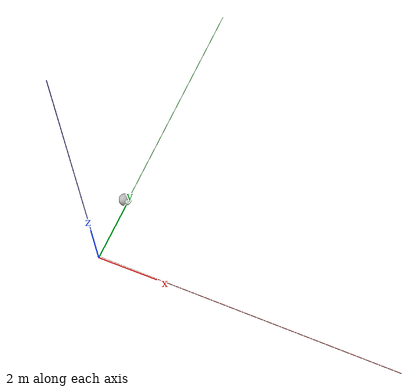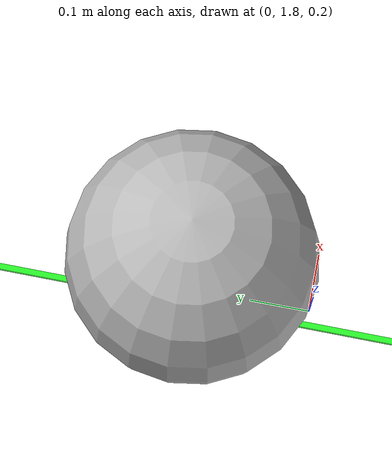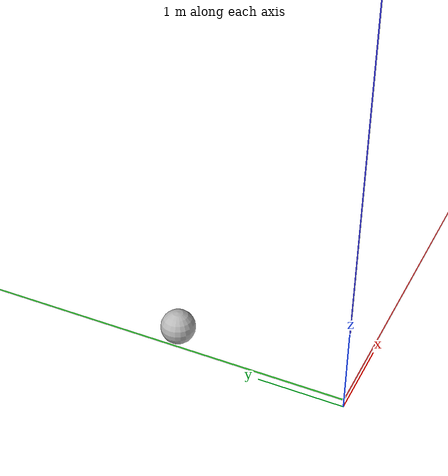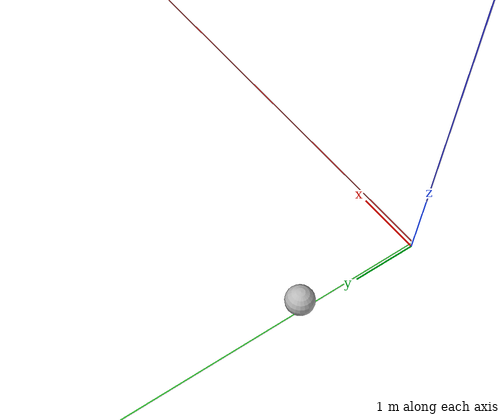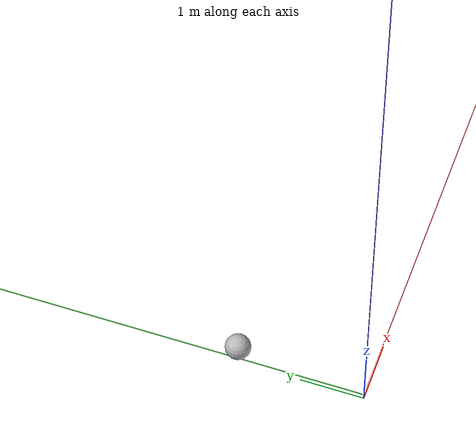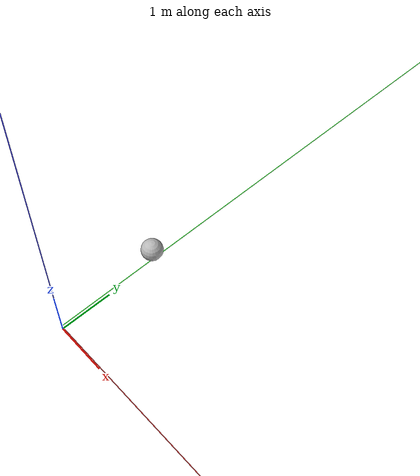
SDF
<sdf version="1.9">
 <world name="e2_runway">
  <physics name="1ms" type="ignore">
   <max_step_size>0.00125</max_step_size>
   <real_time_factor>1.0</real_time_factor>
  </physics>
  <plugin filename="gz-sim-physics-system" name="gz::sim::systems::Physics"/>
  <plugin filename="gz-sim-sensors-system" name="gz::sim::systems::Sensors">
   <render_engine>ogre</render_engine>
  </plugin>
  <plugin filename="gz-sim-user-commands-system" name="gz::sim::systems::UserCommands"/>
  <plugin filename="gz-sim-scene-broadcaster-system" name="gz::sim::systems::SceneBroadcaster"/>
  <plugin filename="gz-sim-imu-system" name="gz::sim::systems::Imu"/>
  <plugin filename="gz-sim-navsat-system" name="gz::sim::systems::NavSat"/>
  <spherical_coordinates>
   <latitude_deg>-35.363262</latitude_deg>
   <longitude_deg>149.165237</longitude_deg>
   <elevation>584</elevation>
   <heading_deg>0</heading_deg>
   <surface_model>EARTH_WGS84</surface_model>
  </spherical_coordinates>
  <light type="directional" name="sun">
   <pose>0 0 10 0 0 0</pose>
   <diffuse>0.8 0.8 0.8 1</diffuse>
   <specular>0.8 0.8 0.8 1</specular>
   <attenuation>
    <range>1000</range>
    <constant>0.9</constant>
    <linear>0.01</linear>
    <quadratic>0.001</quadratic>
   </attenuation>
   <direction>-0.5 0.1 -0.9</direction>
  </light>
  <model name="axes">
   <static>1</static>
   <link name="link">
    <visual name="r">
     <cast_shadows>0</cast_shadows>
     <pose>5 0 0.1 0 0 0</pose>
     <geometry><box><size>10 0.01 0.01</size></box></geometry>
     <material>
      <ambient>1 0 0 0.8</ambient>
      <diffuse>1 0 0 0.8</diffuse>
      <emissive>1 0 0 0.8</emissive>
      <specular>0.5 0.5 0.5 0.8</specular>
     </material>
    </visual>
    <visual name="g">
     <cast_shadows>0</cast_shadows>
     <pose>0 5 0.1 0 0 0</pose>
     <geometry><box><size>0.01 10 0.01</size></box></geometry>
     <material>
      <ambient>0 1 0 0.8</ambient>
      <diffuse>0 1 0 0.8</diffuse>
      <emissive>0 1 0 0.8</emissive>
      <specular>0.5 0.5 0.5 0.8</specular>
     </material>
    </visual>
    <visual name="b">
     <cast_shadows>0</cast_shadows>
     <pose>0 0 5.1 0 0 0</pose>
     <geometry><box><size>0.01 0.01 10</size></box></geometry>
     <material>
      <ambient>0 0 1 0.8</ambient>
      <diffuse>0 0 1 0.8</diffuse>
      <emissive>0 0 1 0.8</emissive>
      <specular>0.5 0.5 0.5 0.8</specular>
     </material>
    </visual>
    <sensor name="navsat_sensor" type="navsat"><always_on>1</always_on><update_rate>1</update_rate></sensor>
   </link>
  </model>
  <model name="sphere">
   <pose>0 2.0 0.4 0 0 0</pose>
   <static>false</static>
   <enable_wind>true</enable_wind>
   <self_collide>true</self_collide>
   <link name="link">
    <inertial><mass>0.05</mass><inertia><ixx>0.01</ixx><iyy>0.01</iyy><izz>0.01</izz></inertia></inertial>
    <collision name="collision"><geometry><sphere><radius>0.2</radius></sphere></geometry></collision>
    <visual name="visual"><geometry><sphere><radius>0.2</radius></sphere></geometry></visual>
   </link>
  </model>
  <wind><linear_velocity>1 0 0</linear_velocity></wind>
  <plugin filename="gz-sim-wind-effects-system" name="gz::sim::systems::WindEffects">
   <force_approximation_scaling_factor>1</force_approximation_scaling_factor>
   <horizontal>
    <magnitude>
     <time_for_rise>10</time_for_rise>
     <sin><amplitude_percent>0.05</amplitude_percent><period>60</period></sin>
     <noise type="gaussian"><mean>0</mean><stddev>0.0002</stddev></noise>
    </magnitude>
    <direction>
     <time_for_rise>30</time_for_rise>
     <sin><amplitude>5</amplitude><period>20</period></sin>
     <noise type="gaussian"><mean>0</mean><stddev>0.03</stddev></noise>
    </direction>
   </horizontal>
   <vertical><noise type="gaussian"><mean>0</mean><stddev>0.03</stddev></noise></vertical>
  </plugin>
 </world>
</sdf>
